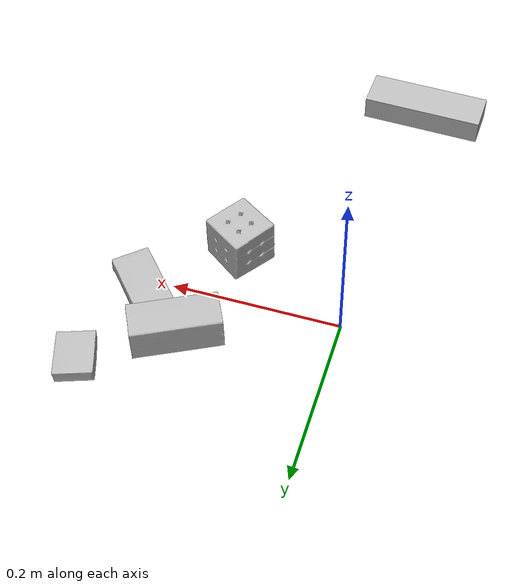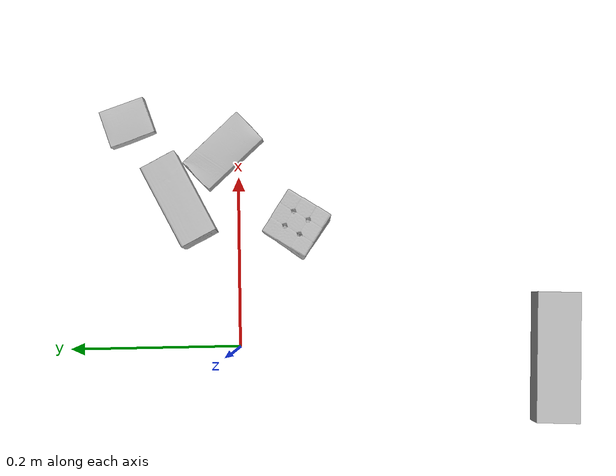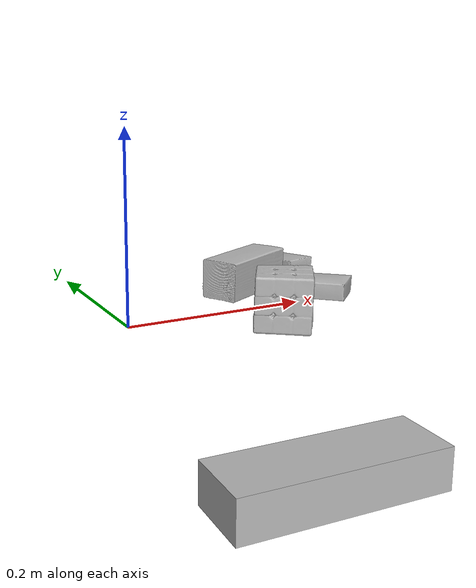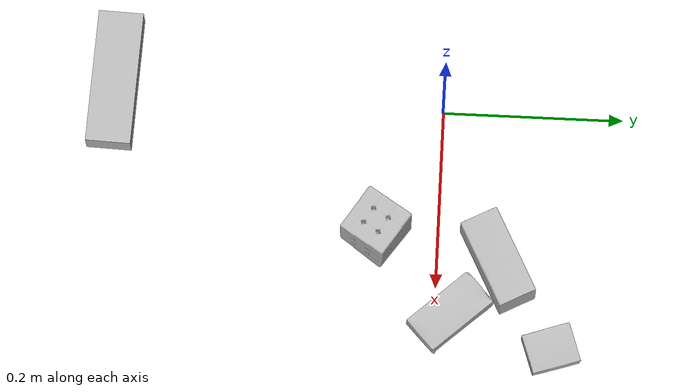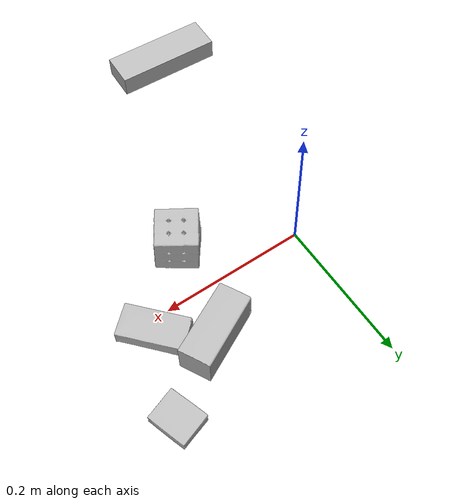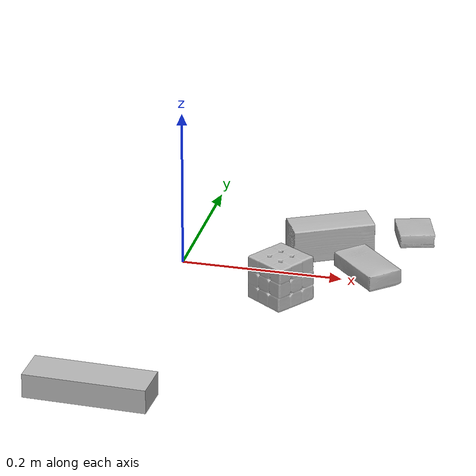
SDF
<sdf version="1.4">
  <world name="default">
    <light name="light1" type="point">
      <pose>0 0 1 0 0 0</pose>
      <diffuse>3 3 3 1</diffuse>
      <specular>3 3 3 1</specular>
    </light>
    <light name="light2" type="point">
      <pose>0 0.5 2 0 0 0</pose>
      <diffuse>1 1 1 1</diffuse>
      <specular>1 1 1 1</specular>
    </light>
    <light name="light3" type="point">
      <pose>0 0.5 2 0 0 0</pose>
      <diffuse>3 3 3 1</diffuse>
      <specular>3 3 3 1</specular>
    </light>
    <scene>
      <ambient>0.7 0.7 0.7</ambient>
    </scene>
    <model name="box1">
      <link name="link_box1">
        <collision name="default">
          <geometry>
            <mesh>
              <uri>model://wood_block/collision_meshes/collision.obj</uri>
              <scale>0.5 0.5 0.5</scale>
            </mesh>
          </geometry>
          <surface>
            <friction>
              <ode>
                <mu>0.5</mu>
                <mu2>0.5</mu2>
              </ode>
            </friction>
          <contact>
        <ode>
            <max_vel>0</max_vel>
            <min_depth>0.0001</min_depth>
            <kp>1e8</kp>
        </ode>
    </contact></surface>
        </collision>
        <visual name="default">
          <geometry>
            <mesh>
              <uri>model://wood_block/visual_meshes/visual.dae</uri>
              <scale>0.5 0.5 0.5</scale>
            </mesh>
          </geometry>
        </visual>
        <inertial>
          <mass>0.21249504387378693</mass>
          <pose>-2.906657528001233e-06 -0.00028540470520965755 0.00013204290007706732 -0.05220867383734612 -0.005192696375656893 -0.006861378651330705</pose>
          <inertia>
            <ixx>7.108762e-05</ixx>
            <iyy>0.00022456584</iyy>
            <izz>0.00022372584</izz>
            <ixy>0</ixy>
            <ixz>0</ixz>
            <iyz>0</iyz>
          </inertia>
        </inertial>
      </link>
      <pose>0.17107486724853516 0.06658371537923813 0.022629261016845703 -0.005208418412742313 0.005718775033263569 -2.664842355342546</pose>
    </model>
    <model name="box2">
      <link name="link_box2">
        <collision name="default">
          <geometry>
            <mesh>
              <uri>model://sugar_box/collision_meshes/collision.obj</uri>
              <scale>0.5 0.5 0.5</scale>
            </mesh>
          </geometry>
          <surface>
            <friction>
              <ode>
                <mu>0.5</mu>
                <mu2>0.5</mu2>
              </ode>
            </friction>
          <contact>
        <ode>
            <max_vel>0</max_vel>
            <min_depth>0.0001</min_depth>
            <kp>1e8</kp>
        </ode>
    </contact></surface>
        </collision>
        <visual name="default">
          <geometry>
            <mesh>
              <uri>model://sugar_box/visual_meshes/visual.dae</uri>
              <scale>0.5 0.5 0.5</scale>
            </mesh>
          </geometry>
        </visual>
        <inertial>
          <mass>0.11089310050010681</mass>
          <pose>0.0005171863595023751 1.924554817378521e-05 -0.00018182402709499002 -0.0004046262999979174 0.001050663638672674 0.002615379254561693</pose>
          <inertia>
            <ixx>2.3098954e-05</ixx>
            <iyy>7.4660566e-05</iyy>
            <izz>8.9377616e-05</izz>
            <ixy>0</ixy>
            <ixz>0</ixz>
            <iyz>0</iyz>
          </inertia>
        </inertial>
      </link>
      <pose>0.22913889586925507 0.01706882379949093 0.011399301700294018 0.0007759829042130917 -0.023432849467417388 -0.8354227736847252</pose>
    </model>
    <model name="box3">
      <link name="link_box3">
        <collision name="default">
          <geometry>
            <mesh>
              <uri>model://jenga/collision_meshes/collision.obj</uri>
              <scale>1.0 1.0 1.0</scale>
            </mesh>
          </geometry>
          <surface>
            <friction>
              <ode>
                <mu>0.5</mu>
                <mu2>0.5</mu2>
              </ode>
            </friction>
          <contact>
        <ode>
            <max_vel>0</max_vel>
            <min_depth>0.0001</min_depth>
            <kp>1e8</kp>
        </ode>
    </contact></surface>
        </collision>
        <visual name="default">
          <geometry>
            <mesh>
              <uri>model://jenga/visual_meshes/visual.dae</uri>
              <scale>1.0 1.0 1.0</scale>
            </mesh>
          </geometry>
        </visual>
        <inertial>
          <mass>0.163609579205513</mass>
          <pose>-2.502855807051674e-07 -0.0001025000965455547 -4.0923401684267446e-05 0.0 -7.34215461761844e-07 0.0</pose>
          <inertia>
            <ixx>4.527474e-05</ixx>
            <iyy>0.00030678045</iyy>
            <izz>0.0003275142</izz>
            <ixy>0</ixy>
            <ixz>0</ixz>
            <iyz>0</iyz>
          </inertia>
        </inertial>
      </link>
      <pose>-0.017047218978405 -0.36597493290901184 0.014999995939433575 1.729783533426208e-08 2.016086112627492e-09 3.10192359022921</pose>
    </model>
    <model name="box4">
      <link name="link_box4">
        <collision name="default">
          <geometry>
            <mesh>
              <uri>model://rubiks_cube/collision_meshes/collision.obj</uri>
              <scale>1.0 1.0 1.0</scale>
            </mesh>
          </geometry>
          <surface>
            <friction>
              <ode>
                <mu>0.5</mu>
                <mu2>0.5</mu2>
              </ode>
            </friction>
          <contact>
        <ode>
            <max_vel>0</max_vel>
            <min_depth>0.0001</min_depth>
            <kp>1e8</kp>
        </ode>
    </contact></surface>
        </collision>
        <visual name="default">
          <geometry>
            <mesh>
              <uri>model://rubiks_cube/visual_meshes/visual.dae</uri>
              <scale>1.0 1.0 1.0</scale>
            </mesh>
          </geometry>
        </visual>
        <inertial>
          <mass>0.25540637969970703</mass>
          <pose>2.6721041649580002e-05 5.2569666877388954e-05 -7.264316082000732e-06 -0.054671713185757496 -0.09814043055608018 -0.034455401135126476</pose>
          <inertia>
            <ixx>0.00014112917</ixx>
            <iyy>0.000140471</iyy>
            <izz>0.00014229867</izz>
            <ixy>0</ixy>
            <ixz>0</ixz>
            <iyz>0</iyz>
          </inertia>
        </inertial>
      </link>
      <pose>0.14006759226322174 -0.06856454163789749 0.028678974136710167 -3.3825304947049352e-06 -5.878337956347378e-07 -2.152088912563013</pose>
    </model>
    <model name="box5">
      <link name="link_box5">
        <collision name="default">
          <geometry>
            <mesh>
              <uri>model://pudding_box/collision_meshes/collision.obj</uri>
              <scale>0.5 0.5 0.5</scale>
            </mesh>
          </geometry>
          <surface>
            <friction>
              <ode>
                <mu>0.5</mu>
                <mu2>0.5</mu2>
              </ode>
            </friction>
          <contact>
        <ode>
            <max_vel>0</max_vel>
            <min_depth>0.0001</min_depth>
            <kp>1e8</kp>
        </ode>
    </contact></surface>
        </collision>
        <visual name="default">
          <geometry>
            <mesh>
              <uri>model://pudding_box/visual_meshes/visual.dae</uri>
              <scale>0.5 0.5 0.5</scale>
            </mesh>
          </geometry>
        </visual>
        <inertial>
          <mass>0.04848850890994072</mass>
          <pose>0.00024474109522998333 0.000403394311433658 -0.0002594413817860186 0.0052131017882315455 -0.0066037973363940366 0.020079830752013892</pose>
          <inertia>
            <ixx>1.370344e-05</ixx>
            <iyy>9.219772e-06</iyy>
            <izz>2.023671e-05</izz>
            <ixy>0</ixy>
            <ixz>0</ixz>
            <iyz>0</iyz>
          </inertia>
        </inertial>
      </link>
      <pose>0.2651550769805908 0.12924890220165253 0.009862903505563736 0.022349841672403132 -0.011390770686654323 -2.8181204548079335</pose>
    </model>
  <physics type="ode">
      <max_contacts>50</max_contacts>
      <ode>
        <solver>
          <type>quick</type>
          <iters>75</iters>
        </solver>
        <constraints>
          <contact_max_correcting_vel>0</contact_max_correcting_vel>
          <contact_surface_layer>0</contact_surface_layer>
        </constraints>
      </ode>
    </physics></world>
</sdf>
